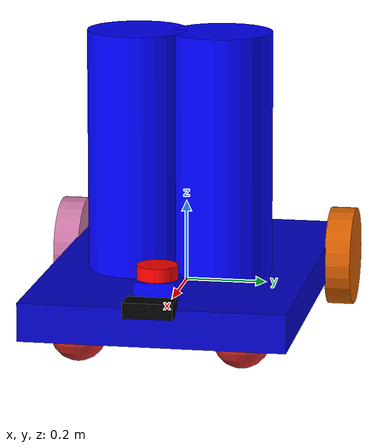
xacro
<?xml version="1.0" encoding="UTF-8"?>
<robot name="full_robot" xmlns:xacro="http://www.ros.org/wiki/xacro">
  <material name="Blue">
    <color rgba="0 0 0.8 1" />
  </material>
  <material name="Black">
    <color rgba="0 0 0 1" />
  </material>
  <material name="White">
    <color rgba="1 1 1 1" />
  </material>
  <material name="Red">
    <color rgba="1 0 0 1" />
  </material>

  <link name="base_footprint" />

  <link name="base_link">
    <pose>0 0 0.1 0 0 0</pose>

    <inertial>
      <mass value="10" />
      <origin xyz="0 0 0.1" rpy="0 0 0" />
      <inertia ixx="0.1" iyy="0.1" izz="0.1" ixy="0.0" ixz="0.0" iyz="0.0" />
    </inertial>

    <visual name='base_visual'>
      <geometry>
        <box size="0.984 0.65 0.095" />
      </geometry>
      <origin rpy="0 0 0" xyz="0 0 0" />
      <material name="Blue" />
    </visual>
    <collision name='base_collision'>
      <geometry>
        <box size="0.984 0.65 0.095" />
      </geometry>
    </collision>

    <collision name='lidar_bed'>
      <origin xyz="0.4 0.0 0.05" rpy="0.0 0.0 0.0" />
      <geometry>
        <box size="0.1 0.1 0.1" />
      </geometry>
    </collision>
    <visual name='lidar_bed_visual'>
      <origin xyz="0.4 0.0 0.05" rpy="0.0 0.0 0.0" />

      <geometry>
        <box size="0.1 0.1 0.1" />
      </geometry>
      <material name="blue">
        <color rgba="0 0 1 1" />
      </material>
    </visual>

  </link>

  <link name="caster_right">
  <collision name="caster_wheel_right_collision">
    <origin rpy="0 0 0" xyz="0 0 0" />
    <geometry>
      <sphere radius="0.07" />
    </geometry>
  </collision>
  <visual name="caster_wheel_right_visual">
    <origin rpy="0 0 0" xyz="0 0 0" />
    <geometry>
      <sphere radius="0.07" />
    </geometry>
  </visual>
</link>

<gazebo reference="caster_right">
  <mu1 value="0.0"/>
  <mu2 value="0.0"/>
  <material>Gazebo/Red</material>
  <turnGravityOff>false</turnGravityOff>
</gazebo>

<link name="caster_left">
  <collision name="caster_wheel_left_collision">
    <origin rpy="0 0 0" xyz="0 0 0" />
    <geometry>
      <sphere radius="0.07" />
    </geometry>
  </collision>

  <visual name="caster_wheel_left_visual">
    <origin rpy="0 0 0" xyz="0 0 0" />
    <geometry>
      <sphere radius="0.07" />
    </geometry>
  </visual>
</link>

<gazebo reference="caster_left">
  <mu1 value="0.0"/>
  <mu2 value="0.0"/>
  <material>Gazebo/Red</material>
  <turnGravityOff>false</turnGravityOff>
</gazebo>

<joint name="caster_right_joint" type="fixed">
  <parent link="base_link" />
  <child link="caster_right" />
  <axis xyz="0 1 0" />
  <origin xyz="0.367135 0.2 -0.05" />
</joint>

<joint name="caster_left_joint" type="fixed">
  <parent link="base_link" />
  <child link="caster_left" />
  <axis xyz="0 1 0" />
  <origin xyz="0.367135 -0.2 -0.05" />
</joint>

  <link name="laser_frame">
    <visual>
      <geometry>
        <cylinder radius="0.05" length="0.04" />
      </geometry>
      <material name="Red" />
    </visual>
    <collision>
      <geometry>
        <cylinder radius="0.05" length="0.04" />
      </geometry>
    </collision>
    <inertial>
      <mass value="0.5" />
      <origin xyz="0 0 0" rpy="0 0 0" />
      <inertia ixx="0.03" iyy="0.03" izz="0.03" ixy="0.0" ixz="0.0" iyz="0.0" />
    </inertial>
  </link>

  <joint name='laser_frame_to_base_link' type='fixed'>
    <parent link="base_link" />
    <child link="laser_frame" />
    <origin xyz="0.4 0.0 0.114" rpy="0.0 0.0 0.0" />
    <axis xyz="0 0 1" />

  </joint>

  <gazebo reference="laser_frame">
    <sensor type="ray" name="head_hokuyo_sensor">
      <pose>0 0 0 0 0 0</pose>
      <visualize>true</visualize>
      <update_rate>40</update_rate>
      <ray>
        <scan>
          <horizontal>
            <samples>720</samples>
            <resolution>1</resolution>
            <min_angle>-2.250796</min_angle>
            <max_angle>2.250796</max_angle>
          </horizontal>
        </scan>
        <range>
          <min>0.10</min>
          <max>30.0</max>
          <resolution>0.01</resolution>
        </range>
        <noise>
          <type>gaussian</type>
          <!-- Noise parameters based on published spec for Hokuyo laser
achieving "+-30mm" accuracy at range < 10m. A mean of 0.0m and
stddev of 0.01m will put 99.7% of samples within 0.03m of the true
reading. -->
          <mean>0.0</mean>
          <stddev>0.01</stddev>
        </noise>
      </ray>
      <plugin name="gazebo_ros_head_hokuyo_controller" filename="libgazebo_ros_laser.so">
        <topicName>/laser/scan</topicName>
        <frameName>laser_frame</frameName>
      </plugin>
    </sensor>
  </gazebo>

  <joint name="base_footprint_to_base_link" type="fixed">
    <parent link="base_footprint" />
    <child link="base_link" />
    <origin rpy="0 0 0" xyz="0 0 0" />
  </joint>

  <link name="right_wheel">
    <visual name="right_wheel_visual">
      <geometry>
        <cylinder length="0.065" radius="0.125" />
      </geometry>
      <origin rpy="0 1.5707 1.5707" xyz="0 0 0" />
    </visual>
    <collision>
      <origin rpy="0 1.5707 1.5707" xyz="0 0 0" />
      <geometry>
        <cylinder length="0.065" radius="0.125" />
      </geometry>
    </collision>
    <inertial>
      <mass value="1" />
      <origin xyz="0 0 0" rpy="0 1.5707 1.5707" />
      <inertia ixx="0.1" iyy="0.1" izz="0.1" ixy="0.0" ixz="0.0" iyz="0.0" />
    </inertial>
  </link>

  <link name="left_wheel">
    <visual>
      <geometry>
        <cylinder length="0.065" radius="0.125" />
      </geometry>
      <origin rpy="0 1.5707 1.5707" xyz="0 0 0" />
    </visual>
    <collision>
      <origin rpy="0 1.5707 1.5707" xyz="0 0 0" />
      <geometry>
        <cylinder length="0.065" radius="0.125" />
      </geometry>
    </collision>
    <inertial>
      <mass value="1" />
      <origin xyz="0 0 0" rpy="0 0 0" />
      <inertia ixx="0.1" iyy="0.1" izz="0.1" ixy="0.0" ixz="0.0" iyz="0.0" />
    </inertial>
  </link>

  <joint name="wheel_0_joint" type="continuous">
    <parent link="base_link" />
    <child link="right_wheel" />
    <axis xyz="0 1 0" />
    <origin xyz="-0.315 0.355 0.0" />
  </joint>

  <joint name="wheel_1_joint" type="continuous">
    <parent link="base_link" />
    <child link="left_wheel" />
    <axis xyz="0 1 0" />
    <origin xyz="-0.315 -0.355 0.0" />
  </joint>

  <link name="kinect_link">
    <visual>
      <geometry>
        <box size="0.064 0.121 0.0381" />
      </geometry>
      <material name="Black" />
    </visual>
    <collision>
      <geometry>
        <box size="0.064 0.121 0.0381" />
      </geometry>
      <material name="Black" />
    </collision>
    <inertial>
      <mass value="0.0001" />
      <origin xyz="0 0 0" />
      <inertia ixx="0.0001" ixy="0.0" ixz="0.0"
        iyy="0.0001" iyz="0.0"
        izz="0.0001" />
    </inertial>
  </link>

  <joint name="kinect_depth_joint" type="fixed">
    <origin xyz="0 0.028 0" rpy="0 0 0" />
    <parent link="kinect_link" />
    <child link="kinect_depth_frame" />
  </joint>

  <link name="kinect_depth_frame">
    <inertial>
      <mass value="0.0001" />
      <origin xyz="0 0 0" />
      <inertia ixx="0.0001" ixy="0.0" ixz="0.0"
        iyy="0.0001" iyz="0.0"
        izz="0.0001" />
    </inertial>
  </link>

  <joint name="depth_optical_joint" type="fixed">
    <origin xyz="0 0 0" rpy="0 0 0" />
    <parent link="kinect_depth_frame" />
    <child link="kinect_depth_optical_frame" />
  </joint>

  <link name="kinect_depth_optical_frame">
    <inertial>
      <mass value="0.0001" />
      <origin xyz="0 0 0" />
      <inertia ixx="0.0001" ixy="0.0" ixz="0.0"
        iyy="0.0001" iyz="0.0"
        izz="0.0001" />
    </inertial>
  </link>

  <joint name="base_link_to_kinect_link" type="fixed">
    <parent link="base_link" />
    <child link="kinect_link" />
    <origin rpy="0 0 0" xyz="0.5 0 0.05155" />
  </joint>

  <link name="leg1">
    <visual>
      <origin rpy="0 0 0" xyz="0 0 0" />
      <geometry>
        <cylinder radius="0.125" length="0.6" />
      </geometry>
      <material name="blue">
        <color rgba="0 0 1 1" />
      </material>
    </visual>
    <collision>
      <origin rpy="0 0 0" xyz="0 0 0" />
      <geometry>
        <cylinder radius="0.125" length="0.6" />
      </geometry>
      <material name="blue" />
      <color rgba="0 0 1 1" />
    </collision>
    <inertial>
      <mass value="5" />
      <origin xyz="0 0 0" rpy="0 0 0" />
      <inertia ixx="0.03" iyy="0.03" izz="0.03" ixy="0.0" ixz="0.0" iyz="0.0" />
    </inertial>
  </link>
  <link name="leg2">
    <visual>
      <origin rpy="0 0 0" xyz="0 0 0" />
      <geometry>
        <cylinder radius="0.125" length="0.6" />
      </geometry>
      <material name="blue">
        <color rgba="0 0 1 1" />
      </material>
    </visual>
    <collision>
      <origin rpy="0 0 0" xyz="0 0 0" />
      <geometry>
        <cylinder radius="0.125" length="0.6" />
      </geometry>
      <material name="blue" />
      <color rgba="0 0 1 1" />
    </collision>
    <inertial>
      <mass value="5" />
      <origin xyz="0 0 0" rpy="0 0 0" />
      <inertia ixx="0.03" iyy="0.03" izz="0.03" ixy="0.0" ixz="0.0" iyz="0.0" />
    </inertial>
  </link>

  <joint name="base_link_leg1" type="fixed">
    <origin xyz="0.09375 0.105 0.35" rpy="0 0 0" />
    <parent link="base_link" />
    <child link="leg1" />
    <limit effort="30" velocity="1.0" lower="-1.57" upper="1.57" />
    <axis xyz="0 0 1" />
  </joint>
  <joint name="base_link_leg2" type="fixed">
    <origin xyz="0.09375 -0.105 0.35" rpy="0 0 0" />
    <parent link="base_link" />
    <child link="leg2" />
    <limit effort="30" velocity="1.0" lower="-1.57" upper="1.57" />
    <axis xyz="0 0 1" />
  </joint>

  <gazebo>

    <plugin name="differential_drive_controller" filename="libgazebo_ros_diff_drive.so">
      <!-- Plugin update rate in Hz -->
      <updateRate>10</updateRate>
      <!-- Name of left joint, defaults to `left_joint` -->
      <leftJoint>wheel_1_joint</leftJoint>
      <!-- Name of right joint, defaults to `right_joint` -->
      <rightJoint>wheel_0_joint</rightJoint>
      <!-- The distance from the center of one wheel to the other, in meters, defaults to 0.34 m -->
      <wheelSeparation>0.4</wheelSeparation>
      <!-- Diameter of the wheels, in meters, defaults to 0.15 m -->
      <wheelDiameter>0.2</wheelDiameter>
      <!-- Wheel acceleration, in rad/s^2, defaults to 0.0 rad/s^2 -->
      <wheelAcceleration>1.0</wheelAcceleration>
      <!-- Maximum torque which the wheels can produce, in Nm, defaults to 5 Nm -->
      <wheelTorque>20</wheelTorque>
      <!-- Topic to receive geometry_msgs/Twist message commands, defaults to `cmd_vel` -->
      <commandTopic>cmd_vel</commandTopic>
      <!-- Topic to publish nav_msgs/Odometry messages, defaults to `odom` -->
      <odometryTopic>odom</odometryTopic>
      <!-- Odometry frame, defaults to `odom` -->
      <odometryFrame>odom</odometryFrame>
      <!-- Robot frame to calculate odometry from, defaults to `base_footprint` -->
      <robotBaseFrame>base_footprint</robotBaseFrame>
      <!-- Odometry source, 0 for ENCODER, 1 for WORLD, defaults to WORLD -->
      <odometrySource>1</odometrySource>
      <!-- Set to true to publish transforms for the wheel links, defaults to false -->
      <publishWheelTF>true</publishWheelTF>
      <!-- Set to true to publish transforms for the odometry, defaults to true -->
      <publishOdom>true</publishOdom>
      <!-- Set to true to publish sensor_msgs/JointState on /joint_states for the wheel
        joints, defaults to false -->
      <publishWheelJointState>true</publishWheelJointState>
      <!-- Set to true to swap right and left wheels, defaults to true -->
      <legacyMode>false</legacyMode>
    </plugin>
  </gazebo>

</robot>
